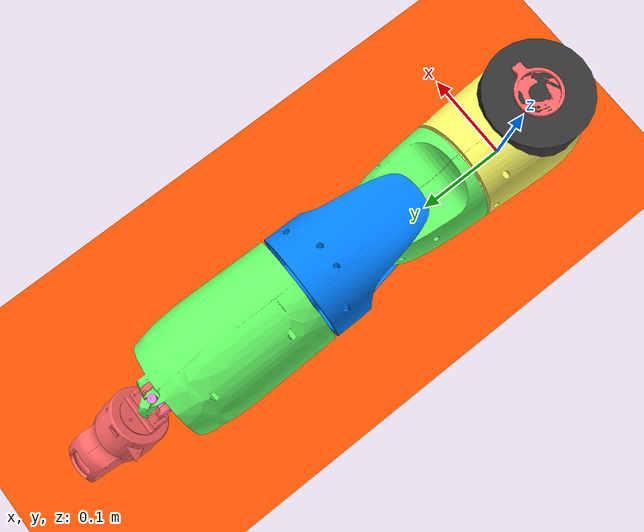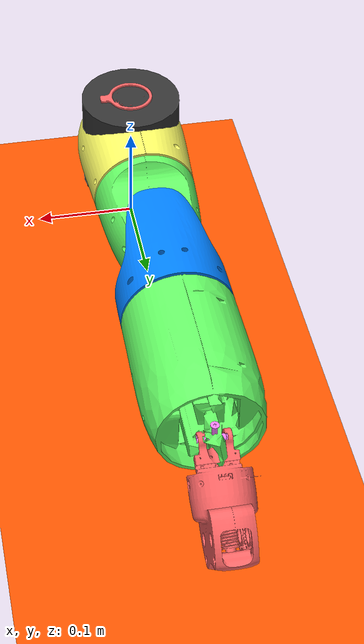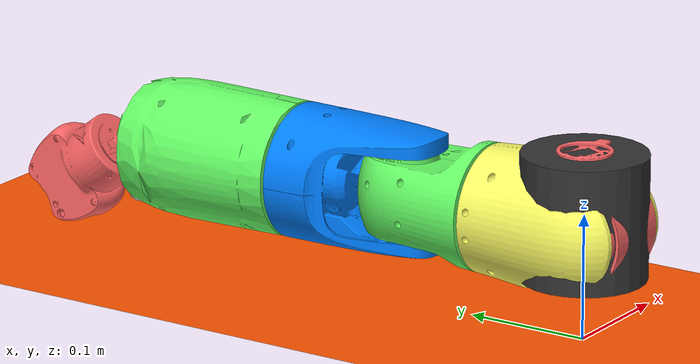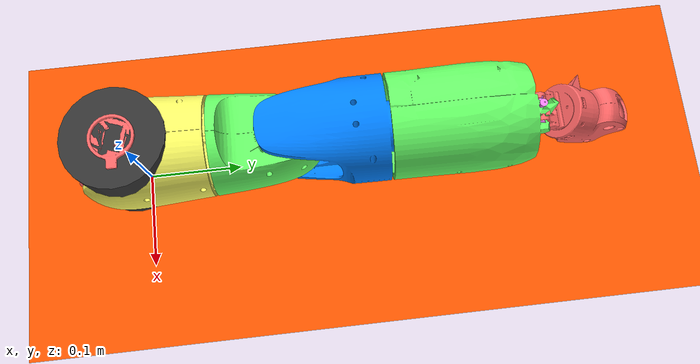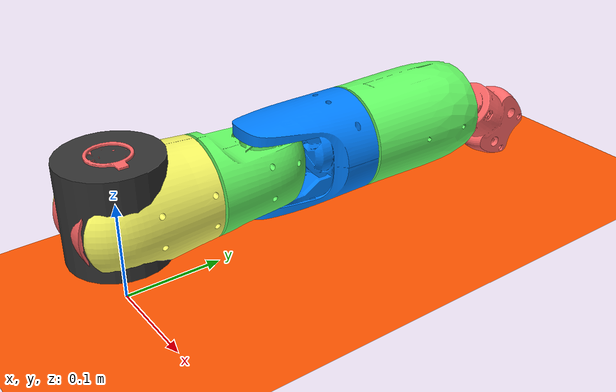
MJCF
<mujoco model="xyber_x1_right_arm">
  <compiler angle='radian' eulerseq="XYZ" meshdir="../meshes"
    autolimits="true" />

  <option timestep="0.001" />

  <visual>
    <global azimuth="150" elevation="-20" />
    <headlight ambient="0.3 0.3 0.3" diffuse="0.6 0.6 0.6" specular="0 0 0" />
    <scale forcewidth="0.03" contactwidth="0.01" contactheight="0.02" com="1" framelength="0.6"
      framewidth="0.05" />
    <rgba haze="0.15 0.25 0.35 1" com="0.502 1 0 0.5" contactpoint="1 1 0.6 0.4"
      contactforce="0.98 0.4 0.4 1" />
  </visual>

  <default>
    <geom contype="0" conaffinity="0" solref="0.005 1" condim="3" friction="1 1" />
    <equality solref="0.005 1" />
    <default class="collision">
      <geom contype="1" group="3" type="capsule" />
      <default class="collision-right">
        <geom contype="4" conaffinity="2" />
      </default>
    </default>
    <default class="arm_joint">
      <joint type="hinge" damping="1" range="-3.14 3.14" />
    </default>
  </default>

  <asset>
    <!-- 只保留右臂相关的mesh -->
    <mesh name="right_shoulder_pitch" file="right_shoulder_pitch.STL" />
    <mesh name="right_shoulder_roll" file="right_shoulder_roll.STL" />
    <mesh name="right_shoulder_yaw" file="right_shoulder_yaw.STL" />
    <mesh name="right_elbow_pitch" file="right_elbow_pitch.STL" />
    <mesh name="right_elbow_yaw" file="right_elbow_yaw.STL" />
    <mesh name="right_wrist_pitch" file="right_wrist_pitch.STL" />
    <mesh name="right_wrist_roll" file="right_wrist_roll.STL" />

    <!-- 添加材质 -->
    <material name="orange" rgba="1.0 0.331 0.0 1.0" specular="0.1" shininess="0.1"/>
    <material name="black" rgba="0.1 0.1 0.1 1.0" specular="0.1" shininess="0.1"/>
    <material name="red" rgba="1.0 0.4 0.4 1.0" />
    <material name="yellow" rgba="1.0 1.0 0.4 1.0" />
    <material name="green" rgba="0.4 1.0 0.4 1.0" />
    <material name="blue" rgba="0.0 0.5 1.0 1.0" />
    <material name="purple" rgba="1.0 0.5 1.0 1.0" />
  </asset>

  <worldbody>
    <!-- 添加地面 -->
    <geom name="floor" pos="0 0 0" size="5 5 0.1" type="plane" material="orange" />

    <!-- 右臂基座 -->
    <body name="right_arm_base" pos="0 0 0.1">
      <inertial pos="0 0 0" mass="1.0" diaginertia="0.1 0.1 0.1"/>
      <geom type="cylinder" size="0.05 0.05" rgba="0.2 0.2 0.2 1" />

      <!-- 右肩关节 -->
      <body name="right_shoulder_pitch_link" pos="0 0 0.05">
        <inertial pos="0.00250704 -0.00149173 -0.0567433" quat="0.995977 -0.00568417 0.0346063 -0.0824611" mass="1.00679" diaginertia="0.00108562 0.000958168 0.000853396"/>
        <joint name="right_shoulder_pitch" class="arm_joint" axis="0 1 0" />
        <geom type="mesh" mesh="right_shoulder_pitch" material="red" />

        <body name="right_shoulder_roll_link" pos="0.0313 0 -0.0592" quat="-2.59734e-06 0.707105 2.59735e-06 0.707108">
          <inertial pos="9.998e-05 -0.0778724 -0.0270563" quat="0.64355 0.765355 0.0062383 -0.00599871" mass="0.691426" diaginertia="0.00133761 0.00119704 0.000636294"/>
          <joint name="right_shoulder_roll" class="arm_joint" axis="1 0 0" />
          <geom type="mesh" mesh="right_shoulder_roll" material="yellow" />

          <body name="right_shoulder_yaw_link" pos="0 -0.1252 -0.0313" quat="0.707105 0.707108 0 0">
            <inertial pos="-0.00189082 -0.00017102 0.0317511" quat="0.694675 -0.204745 -0.19648 0.660985" mass="0.604503" diaginertia="0.000550567 0.000505158 0.000491905"/>
            <joint name="right_shoulder_yaw" class="arm_joint" axis="0 0 1" />
            <geom type="mesh" mesh="right_shoulder_yaw" material="green" />

            <body name="right_elbow_pitch_link" pos="-0.031 0 0.0365" quat="0.5 -0.5 0.5 -0.5">
              <inertial pos="-2.604e-05 -0.0752983 0.0268563" quat="0.802034 0.597278 0.000362597 -2.24278e-05" mass="0.697801" diaginertia="0.00116302 0.00100116 0.000614171"/>
              <joint name="right_elbow_pitch" class="arm_joint" axis="0 0 1" />
              <geom type="mesh" mesh="right_elbow_pitch" material="blue" />

              <body name="right_elbow_yaw_link" pos="0 -0.117 0.031" quat="0.499999 -0.499999 -0.500001 -0.500001">
                <inertial pos="-0.00403154 -0.00910945 -0.047197" quat="0.994559 0.0793425 -0.0232128 -0.0633939" mass="0.573838" diaginertia="0.00105729 0.000985489 0.000647245"/>
                <joint name="right_elbow_yaw" class="arm_joint" axis="0 0 1" />
                <geom type="mesh" mesh="right_elbow_yaw" material="green" />

                <body name="right_wrist_pitch_link" pos="0.006 9.9998e-05 -0.1394" quat="0.707105 0.707108 0 0">
                  <inertial pos="-9.994e-05 0 0.00229425" quat="0.5 0.5 0.5 0.5" mass="0.00900738" diaginertia="5.7e-07 3.8e-07 2.4e-07"/>
                  <joint name="right_wrist_pitch" class="arm_joint" axis="1 0 0" />
                  <geom type="mesh" mesh="right_wrist_pitch" material="purple" />

                  <body name="right_wrist_roll_link" pos="0 0 0" quat="0.707106 7.94894e-07 0.707108 7.94894e-07">
                    <inertial pos="-0.0206623 -0.0314139 -0.00356965" quat="0.373433 0.844098 -0.329445 0.198775" mass="0.370899" diaginertia="0.000404077 0.000356841 0.000211598"/>
                    <joint name="right_wrist_roll" class="arm_joint" axis="0 1 0" />
                    <geom type="mesh" mesh="right_wrist_roll" material="red" />

                    <!-- 添加末端执行器标记 -->
                    <site name="end_effector" pos="0 0 -0.05" size="0.01" rgba="1 1 1 1" />
                  </body>
                </body>
              </body>
            </body>
          </body>
        </body>
      </body>
    </body>
  </worldbody>

  <actuator>
    <motor name="motor_right_shoulder_pitch" joint="right_shoulder_pitch" ctrlrange="-50 50" />
    <motor name="motor_right_shoulder_roll" joint="right_shoulder_roll" ctrlrange="-50 50" />
    <motor name="motor_right_shoulder_yaw" joint="right_shoulder_yaw" ctrlrange="-50 50" />
    <motor name="motor_right_elbow_pitch" joint="right_elbow_pitch" ctrlrange="-50 50" />
    <motor name="motor_right_elbow_yaw" joint="right_elbow_yaw" ctrlrange="-50 50" />
    <motor name="motor_right_wrist_pitch" joint="right_wrist_pitch" ctrlrange="-18 18" />
    <motor name="motor_right_wrist_roll" joint="right_wrist_roll" ctrlrange="-18 18" />
  </actuator>

  <sensor>
    <!-- 关节位置传感器 -->
    <jointpos name="jointpos_right_shoulder_pitch" joint="right_shoulder_pitch" noise="0" />
    <jointpos name="jointpos_right_shoulder_roll" joint="right_shoulder_roll" noise="0" />
    <jointpos name="jointpos_right_shoulder_yaw" joint="right_shoulder_yaw" noise="0" />
    <jointpos name="jointpos_right_elbow_pitch" joint="right_elbow_pitch" noise="0" />
    <jointpos name="jointpos_right_elbow_yaw" joint="right_elbow_yaw" noise="0" />
    <jointpos name="jointpos_right_wrist_pitch" joint="right_wrist_pitch" noise="0" />
    <jointpos name="jointpos_right_wrist_roll" joint="right_wrist_roll" noise="0" />

    <!-- 关节速度传感器 -->
    <jointvel name="jointvel_right_shoulder_pitch" joint="right_shoulder_pitch" noise="0" />
    <jointvel name="jointvel_right_shoulder_roll" joint="right_shoulder_roll" noise="0" />
    <jointvel name="jointvel_right_shoulder_yaw" joint="right_shoulder_yaw" noise="0" />
    <jointvel name="jointvel_right_elbow_pitch" joint="right_elbow_pitch" noise="0" />
    <jointvel name="jointvel_right_elbow_yaw" joint="right_elbow_yaw" noise="0" />
    <jointvel name="jointvel_right_wrist_pitch" joint="right_wrist_pitch" noise="0" />
    <jointvel name="jointvel_right_wrist_roll" joint="right_wrist_roll" noise="0" />

    <!-- 末端执行器位置传感器 -->
    <framepos name="end_effector_pos" objtype="site" objname="end_effector" />
  </sensor>

  <keyframe>
    <key name="home" qpos="0 0 0 0 0 0 0" />
  </keyframe>
</mujoco>
